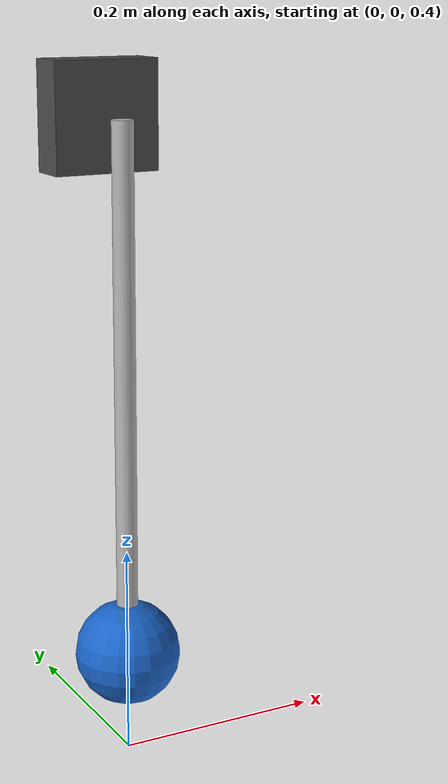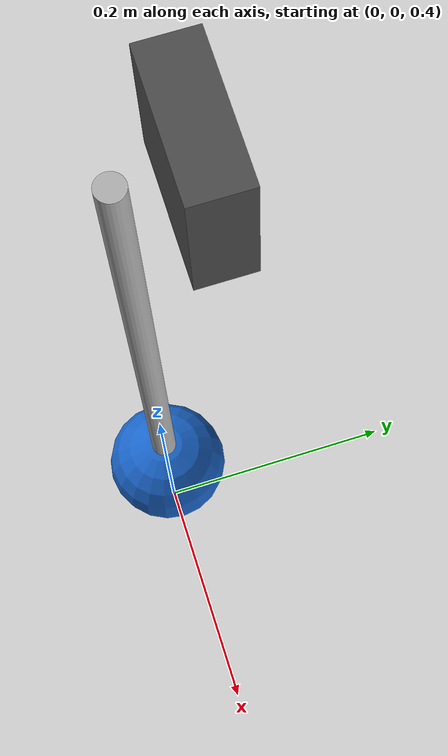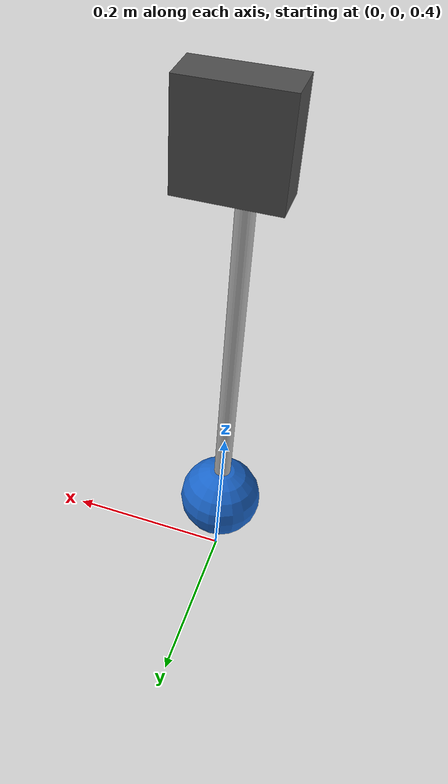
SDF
<?xml version="1.0"?>
<!--
  A simple torque-controlled pendulum: a massless rod with a spherical bob,
  swinging about the world y-axis. At theta = 0 the pendulum hangs straight
  down; at theta = pi it is upright.
-->
<sdf version="1.9">
  <model name="pendulum">

    <!-- Fixed mount at the pivot, 1 m above the ground. -->
    <link name="base">
      <pose>0 0 1 0 0 0</pose>
      <visual name="mount">
        <pose>0 0.05 0 0 0 0</pose>
        <geometry>
          <box>
            <size>0.1 0.04 0.1</size>
          </box>
        </geometry>
        <material>
          <diffuse>0.3 0.3 0.3 1</diffuse>
        </material>
      </visual>
    </link>

    <joint name="base_weld" type="fixed">
      <parent>world</parent>
      <child>base</child>
    </joint>

    <!-- The arm frame sits at the pivot; the bob hangs 0.5 m below it. -->
    <link name="arm">
      <pose relative_to="base">0 0 0 0 0 0</pose>
      <inertial>
        <pose>0 0 -0.5 0 0 0</pose>
        <mass>0.5</mass>
        <!-- Solid sphere of radius 0.05 m: 2/5 m r^2 -->
        <inertia>
          <ixx>0.0005</ixx>
          <iyy>0.0005</iyy>
          <izz>0.0005</izz>
          <ixy>0</ixy>
          <ixz>0</ixz>
          <iyz>0</iyz>
        </inertia>
      </inertial>
      <visual name="rod">
        <pose>0 0 -0.25 0 0 0</pose>
        <geometry>
          <cylinder>
            <radius>0.01</radius>
            <length>0.5</length>
          </cylinder>
        </geometry>
        <material>
          <diffuse>0.7 0.7 0.7 1</diffuse>
        </material>
      </visual>
      <visual name="bob">
        <pose>0 0 -0.5 0 0 0</pose>
        <geometry>
          <sphere>
            <radius>0.05</radius>
          </sphere>
        </geometry>
        <material>
          <diffuse>0.1 0.4 0.8 1</diffuse>
        </material>
      </visual>
    </link>

    <!-- A nonzero effort limit makes Drake add an actuator for this joint. -->
    <joint name="theta" type="revolute">
      <parent>base</parent>
      <child>arm</child>
      <axis>
        <xyz>0 1 0</xyz>
        <limit>
          <effort>1.0</effort>
        </limit>
        <dynamics>
          <damping>0.1</damping>
        </dynamics>
      </axis>
    </joint>

  </model>
</sdf>
